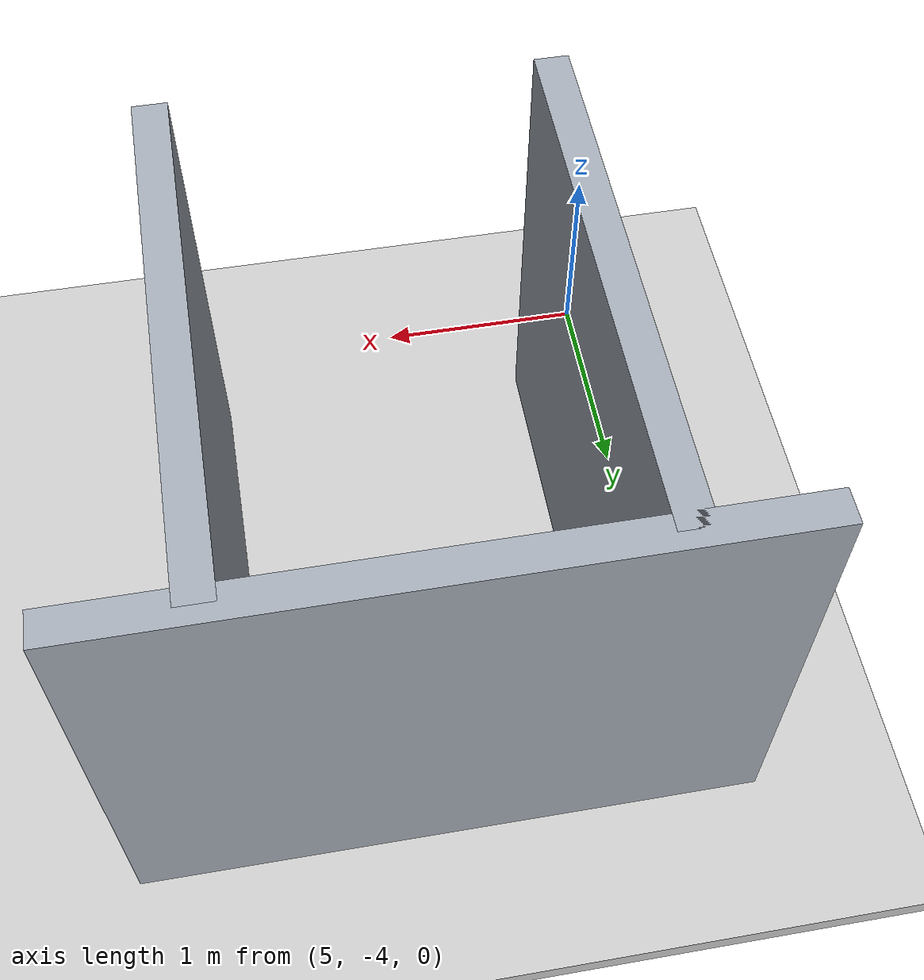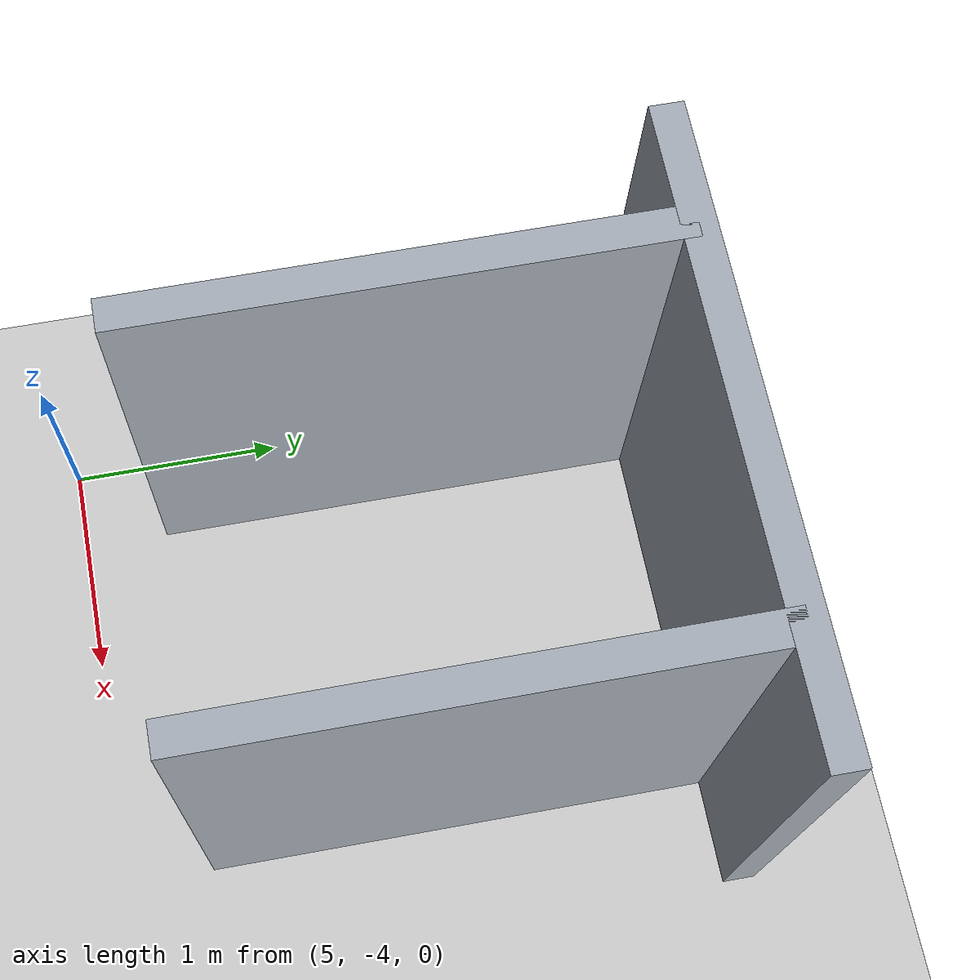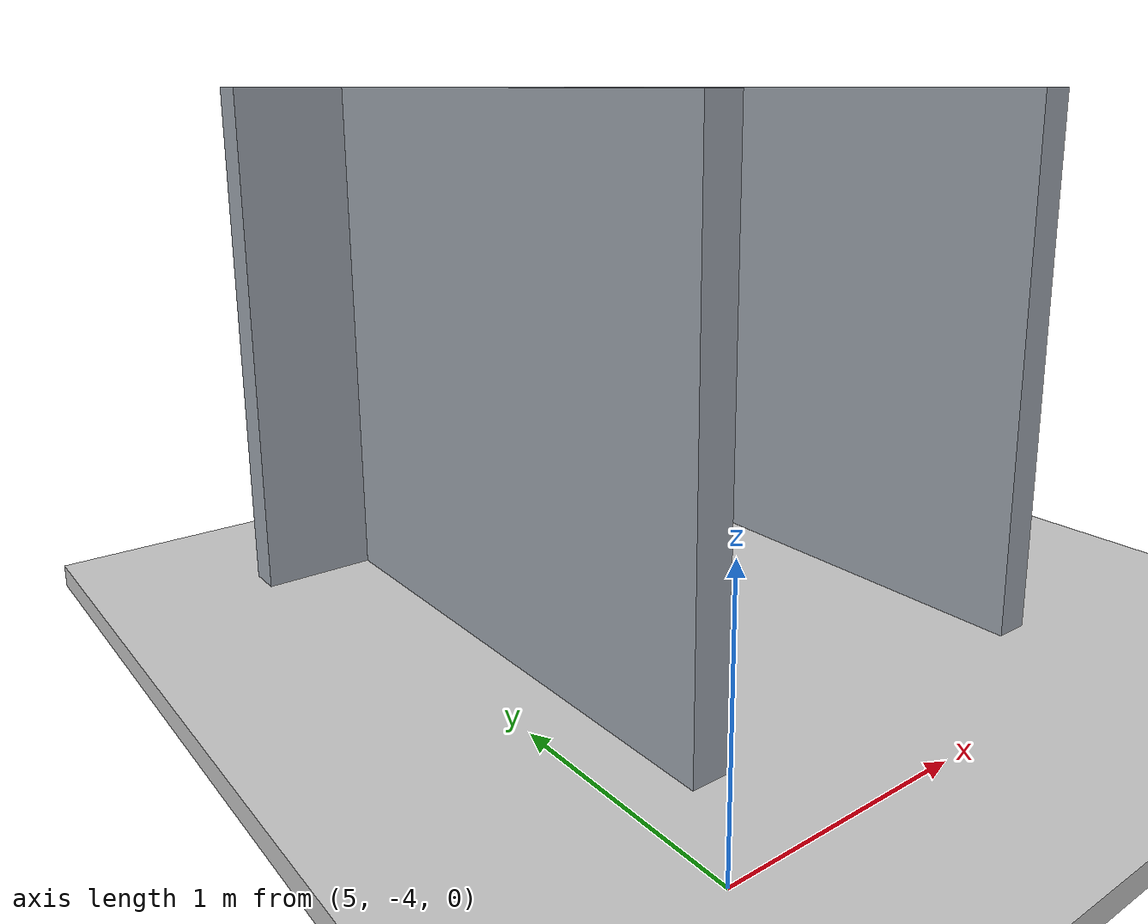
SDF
<sdf version="1.9">
 <world name="default">
  <model name="ground_plane">
   <static>true</static>
   <pose>5.15 0 -0.05 0 0 0</pose>
   <link name="body">
    <collision name="collision"><geometry><box><size>14.3 12 0.1</size></box></geometry></collision>
    <visual name="visual">
     <geometry><box><size>14.3 12 0.1</size></box></geometry>
     <material><ambient>0.8 0.8 0.8 1</ambient><diffuse>0.8 0.8 0.8 1</diffuse></material>
    </visual>
   </link>
  </model>
  <model name="room_-1_1_1">
   <static>true</static>
   <pose>5.3 -2.4 1.1 0 0 0</pose>
   <link name="body">
    <collision name="collision"><geometry><box><size>0.15 2.4 2.2</size></box></geometry></collision>
    <visual name="visual">
     <geometry><box><size>0.15 2.4 2.2</size></box></geometry>
     <material><ambient>0.65 0.68 0.72 1</ambient><diffuse>0.65 0.68 0.72 1</diffuse></material>
    </visual>
   </link>
  </model>
  <model name="hall_-1_2">
   <static>true</static>
   <pose>6.15 -1.2 1.1 0 0 0</pose>
   <link name="body">
    <collision name="collision">
     <geometry><box><size>2.8000000000000007 0.15 2.2</size></box></geometry>
    </collision>
    <visual name="visual">
     <geometry><box><size>2.8000000000000007 0.15 2.2</size></box></geometry>
     <material><ambient>0.65 0.68 0.72 1</ambient><diffuse>0.65 0.68 0.72 1</diffuse></material>
    </visual>
   </link>
  </model>
  <model name="room_-1_2_-1">
   <static>true</static>
   <pose>7.000000000000001 -2.4 1.1 0 0 0</pose>
   <link name="body">
    <collision name="collision"><geometry><box><size>0.15 2.4 2.2</size></box></geometry></collision>
    <visual name="visual">
     <geometry><box><size>0.15 2.4 2.2</size></box></geometry>
     <material><ambient>0.65 0.68 0.72 1</ambient><diffuse>0.65 0.68 0.72 1</diffuse></material>
    </visual>
   </link>
  </model>
 </world>
</sdf>
